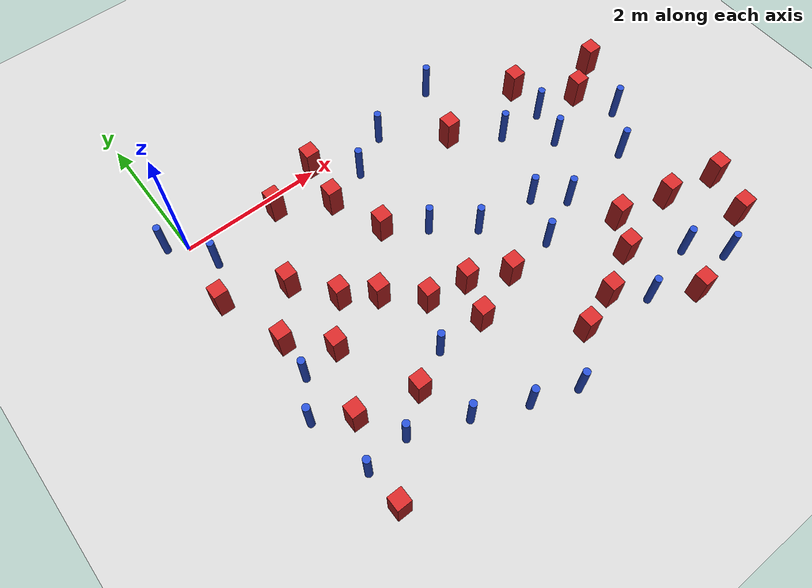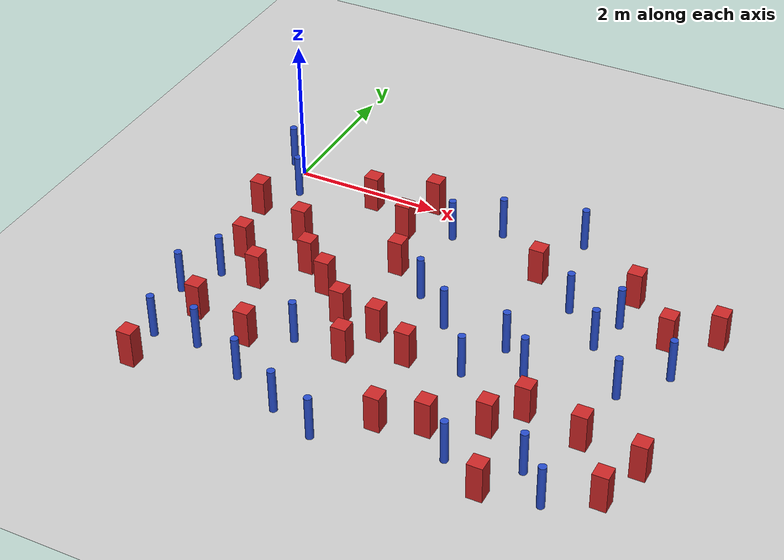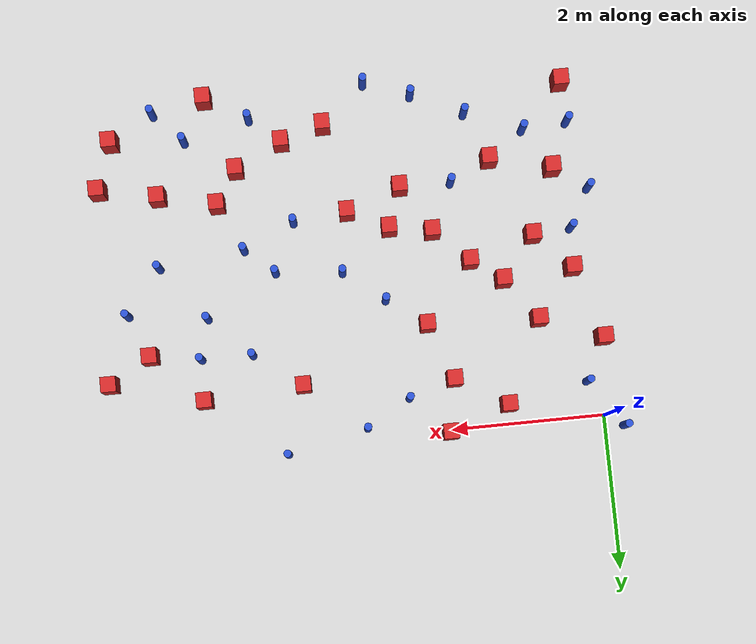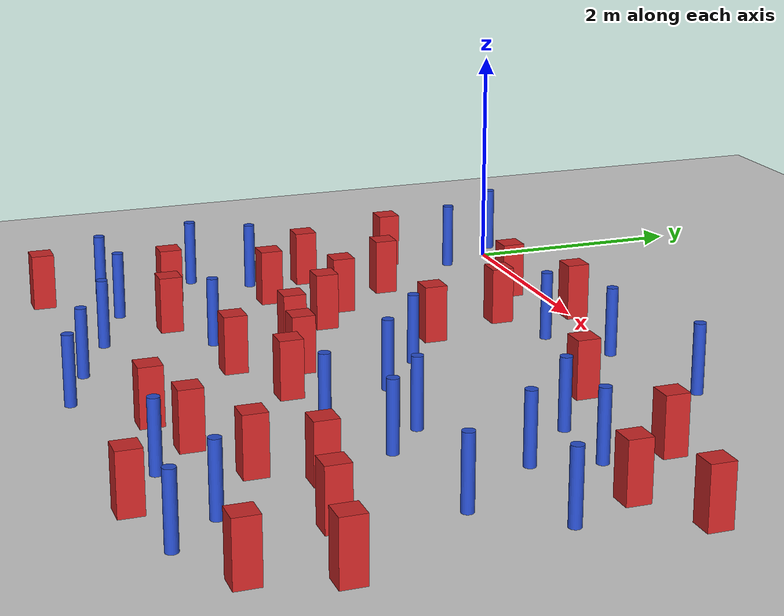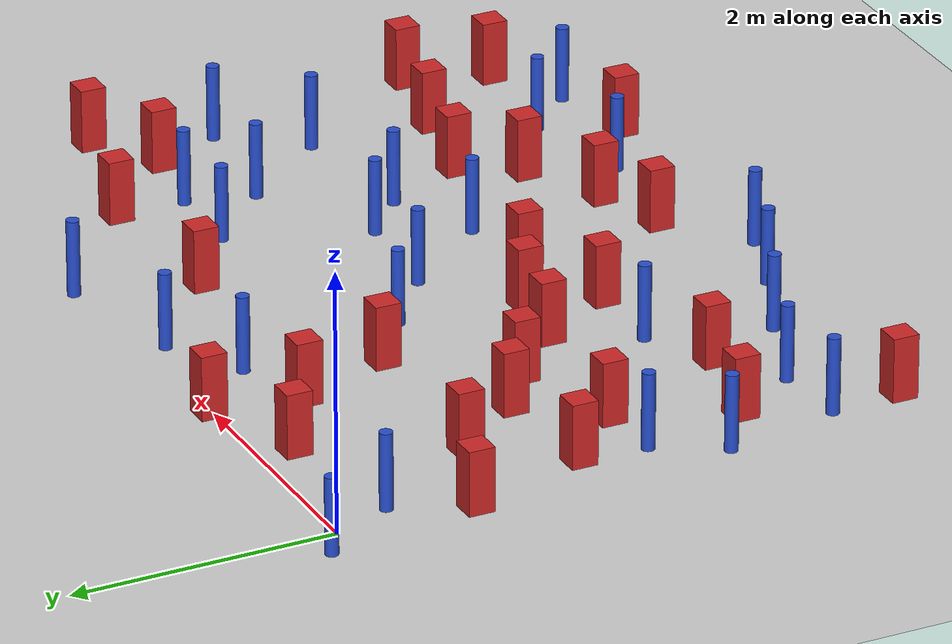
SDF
<sdf version="1.6">
 <world name="default">
  <model name="ground_plane">
   <static>1</static>
   <link name="link">
    <collision name="collision">
     <geometry><plane><normal>0 0 1</normal><size>100 100</size></plane></geometry>
     <surface><friction><ode><mu>100</mu><mu2>50</mu2></ode></friction></surface>
    </collision>
    <visual name="visual">
     <cast_shadows>0</cast_shadows>
     <geometry><plane><normal>0 0 1</normal><size>100 100</size></plane></geometry>
     <material>
      <ambient>1.0 1.0 1.0 1.0</ambient>
      <diffuse>0.8 0.8 0.8 1.0</diffuse>
      <specular>0.01 0.01 0.01 1.000000</specular>
     </material>
    </visual>
   </link>
  </model>
  <model name="NamedLocations">
   <static>true</static>
   <link name="DefaultStart"><pose>8.5 0 0 0 0 3.14</pose></link>
  </model>
  <model name="pole_obstacle0">
   <static>true</static>
   <pose>-0.240299481818 0.152974153635 -9.47619616065e-06 5.49618799737e-07 2.36310414057e-07 -1.55090534801e-07</pose>
   <link name="link">
    <pose>0 0 0.3 0 -0 0</pose>
    <inertial>
     <mass>1</mass>
     <inertia><ixx>0.145833</ixx><ixy>0</ixy><ixz>0</ixz><iyy>0.145833</iyy><iyz>0</iyz><izz>0.125</izz></inertia>
    </inertial>
    <collision name="collision">
     <geometry><cylinder><radius>0.05</radius><length>.6</length></cylinder></geometry>
    </collision>
    <visual name="visual">
     <geometry><cylinder><radius>0.05</radius><length>.6</length></cylinder></geometry>
     <material>
      <script><name>Gazebo/Blue</name><uri>file://media/materials/scripts/gazebo.material</uri></script>
     </material>
    </visual>
   </link>
  </model>
  <model name="square_post_obstacle6">
   <static>true</static>
   <pose>6.10533569681 -4.18703966137 -6.11067671241e-07 -5.50515727128e-06 -8.79689657224e-07 2.37013304536e-05</pose>
   <link name="link">
    <pose>0 0 0.25 0 -0 0</pose>
    <inertial>
     <mass>100</mass>
     <inertia>
      <ixx>0.166667</ixx>
      <ixy>0</ixy>
      <ixz>0</ixz>
      <iyy>0.166667</iyy>
      <iyz>0</iyz>
      <izz>0.166667</izz>
     </inertia>
    </inertial>
    <collision name="collision"><geometry><box><size>.2 .2 .5</size></box></geometry></collision>
    <visual name="visual">
     <geometry><box><size>.2 .2 .5</size></box></geometry>
     <material>
      <script><name>Gazebo/Red</name><uri>file://media/materials/scripts/gazebo.material</uri></script>
     </material>
    </visual>
   </link>
  </model>
  <model name="square_post_obstacle10">
   <static>true</static>
   <pose>2.00440950209 -2.61996437505 -6.11067671241e-07 -5.50515727128e-06 -8.79689657224e-07 2.37013304536e-05</pose>
   <link name="link">
    <pose>0 0 0.25 0 -0 0</pose>
    <inertial>
     <mass>100</mass>
     <inertia>
      <ixx>0.166667</ixx>
      <ixy>0</ixy>
      <ixz>0</ixz>
      <iyy>0.166667</iyy>
      <iyz>0</iyz>
      <izz>0.166667</izz>
     </inertia>
    </inertial>
    <collision name="collision"><geometry><box><size>.2 .2 .5</size></box></geometry></collision>
    <visual name="visual">
     <geometry><box><size>.2 .2 .5</size></box></geometry>
     <material>
      <script><name>Gazebo/Red</name><uri>file://media/materials/scripts/gazebo.material</uri></script>
     </material>
    </visual>
   </link>
  </model>
  <model name="pole_obstacle14">
   <static>true</static>
   <pose>2.72122308292 -4.6622188699 -9.47619616065e-06 5.49618799738e-07 2.3631041406e-07 -1.55090534801e-07</pose>
   <link name="link">
    <pose>0 0 0.3 0 -0 0</pose>
    <inertial>
     <mass>1</mass>
     <inertia><ixx>0.145833</ixx><ixy>0</ixy><ixz>0</ixz><iyy>0.145833</iyy><iyz>0</iyz><izz>0.125</izz></inertia>
    </inertial>
    <collision name="collision">
     <geometry><cylinder><radius>0.05</radius><length>.6</length></cylinder></geometry>
    </collision>
    <visual name="visual">
     <geometry><cylinder><radius>0.05</radius><length>.6</length></cylinder></geometry>
     <material>
      <script><name>Gazebo/Blue</name><uri>file://media/materials/scripts/gazebo.material</uri></script>
     </material>
    </visual>
   </link>
  </model>
  <model name="pole_obstacle15">
   <static>true</static>
   <pose>3.08732034413 -0.124005722721 -9.47619616065e-06 5.49618799737e-07 2.36310414068e-07 -1.55090534797e-07</pose>
   <link name="link">
    <pose>0 0 0.3 0 -0 0</pose>
    <inertial>
     <mass>1</mass>
     <inertia><ixx>0.145833</ixx><ixy>0</ixy><ixz>0</ixz><iyy>0.145833</iyy><iyz>0</iyz><izz>0.125</izz></inertia>
    </inertial>
    <collision name="collision">
     <geometry><cylinder><radius>0.05</radius><length>.6</length></cylinder></geometry>
    </collision>
    <visual name="visual">
     <geometry><cylinder><radius>0.05</radius><length>.6</length></cylinder></geometry>
     <material>
      <script><name>Gazebo/Blue</name><uri>file://media/materials/scripts/gazebo.material</uri></script>
     </material>
    </visual>
   </link>
  </model>
  <model name="square_post_obstacle14">
   <static>true</static>
   <pose>3.09111483869 -2.97854127814 -6.11067671241e-07 -5.50515727128e-06 -8.79689657224e-07 2.37013304536e-05</pose>
   <link name="link">
    <pose>0 0 0.25 0 -0 0</pose>
    <inertial>
     <mass>100</mass>
     <inertia>
      <ixx>0.166667</ixx>
      <ixy>0</ixy>
      <ixz>0</ixz>
      <iyy>0.166667</iyy>
      <iyz>0</iyz>
      <izz>0.166667</izz>
     </inertia>
    </inertial>
    <collision name="collision"><geometry><box><size>.2 .2 .5</size></box></geometry></collision>
    <visual name="visual">
     <geometry><box><size>.2 .2 .5</size></box></geometry>
     <material>
      <script><name>Gazebo/Red</name><uri>file://media/materials/scripts/gazebo.material</uri></script>
     </material>
    </visual>
   </link>
  </model>
  <model name="square_post_obstacle24">
   <static>true</static>
   <pose>2.56142833989 -2.71407532058 -6.11067671241e-07 -5.50515727128e-06 -8.79689657224e-07 2.37013304536e-05</pose>
   <link name="link">
    <pose>0 0 0.25 0 -0 0</pose>
    <inertial>
     <mass>100</mass>
     <inertia>
      <ixx>0.166667</ixx>
      <ixy>0</ixy>
      <ixz>0</ixz>
      <iyy>0.166667</iyy>
      <iyz>0</iyz>
      <izz>0.166667</izz>
     </inertia>
    </inertial>
    <collision name="collision"><geometry><box><size>.2 .2 .5</size></box></geometry></collision>
    <visual name="visual">
     <geometry><box><size>.2 .2 .5</size></box></geometry>
     <material>
      <script><name>Gazebo/Red</name><uri>file://media/materials/scripts/gazebo.material</uri></script>
     </material>
    </visual>
   </link>
  </model>
  <model name="pole_obstacle35">
   <static>true</static>
   <pose>2.11501321267 -4.44668897522 -9.47619616065e-06 5.49618799738e-07 2.3631041406e-07 -1.55090534801e-07</pose>
   <link name="link">
    <pose>0 0 0.3 0 -0 0</pose>
    <inertial>
     <mass>1</mass>
     <inertia><ixx>0.145833</ixx><ixy>0</ixy><ixz>0</ixz><iyy>0.145833</iyy><iyz>0</iyz><izz>0.125</izz></inertia>
    </inertial>
    <collision name="collision">
     <geometry><cylinder><radius>0.05</radius><length>.6</length></cylinder></geometry>
    </collision>
    <visual name="visual">
     <geometry><cylinder><radius>0.05</radius><length>.6</length></cylinder></geometry>
     <material>
      <script><name>Gazebo/Blue</name><uri>file://media/materials/scripts/gazebo.material</uri></script>
     </material>
    </visual>
   </link>
  </model>
  <model name="pole_obstacle39">
   <static>true</static>
   <pose>2.69395687994 -1.76997188868 -9.47619616065e-06 5.49618799737e-07 2.36310414072e-07 -1.55090534793e-07</pose>
   <link name="link">
    <pose>0 0 0.3 0 -0 0</pose>
    <inertial>
     <mass>1</mass>
     <inertia><ixx>0.145833</ixx><ixy>0</ixy><ixz>0</ixz><iyy>0.145833</iyy><iyz>0</iyz><izz>0.125</izz></inertia>
    </inertial>
    <collision name="collision">
     <geometry><cylinder><radius>0.05</radius><length>.6</length></cylinder></geometry>
    </collision>
    <visual name="visual">
     <geometry><cylinder><radius>0.05</radius><length>.6</length></cylinder></geometry>
     <material>
      <script><name>Gazebo/Blue</name><uri>file://media/materials/scripts/gazebo.material</uri></script>
     </material>
    </visual>
   </link>
  </model>
  <model name="pole_obstacle44">
   <static>true</static>
   <pose>0.18735743125 -2.48860480295 -9.47619616065e-06 5.49618799738e-07 2.36310414068e-07 -1.55090534794e-07</pose>
   <link name="link">
    <pose>0 0 0.3 0 -0 0</pose>
    <inertial>
     <mass>1</mass>
     <inertia><ixx>0.145833</ixx><ixy>0</ixy><ixz>0</ixz><iyy>0.145833</iyy><iyz>0</iyz><izz>0.125</izz></inertia>
    </inertial>
    <collision name="collision">
     <geometry><cylinder><radius>0.05</radius><length>.6</length></cylinder></geometry>
    </collision>
    <visual name="visual">
     <geometry><cylinder><radius>0.05</radius><length>.6</length></cylinder></geometry>
     <material>
      <script><name>Gazebo/Blue</name><uri>file://media/materials/scripts/gazebo.material</uri></script>
     </material>
    </visual>
   </link>
  </model>
  <model name="square_post_obstacle37">
   <static>true</static>
   <pose>5.53992866116 -3.40059529593 -6.11067671241e-07 -5.50515727128e-06 -8.79689657224e-07 2.37013304536e-05</pose>
   <link name="link">
    <pose>0 0 0.25 0 -0 0</pose>
    <inertial>
     <mass>100</mass>
     <inertia>
      <ixx>0.166667</ixx>
      <ixy>0</ixy>
      <ixz>0</ixz>
      <iyy>0.166667</iyy>
      <iyz>0</iyz>
      <izz>0.166667</izz>
     </inertia>
    </inertial>
    <collision name="collision"><geometry><box><size>.2 .2 .5</size></box></geometry></collision>
    <visual name="visual">
     <geometry><box><size>.2 .2 .5</size></box></geometry>
     <material>
      <script><name>Gazebo/Red</name><uri>file://media/materials/scripts/gazebo.material</uri></script>
     </material>
    </visual>
   </link>
  </model>
  <model name="pole_obstacle67">
   <static>true</static>
   <pose>0.181871687395 -0.462348068534 -9.47619616065e-06 5.49618799737e-07 2.36310414052e-07 -1.55090534804e-07</pose>
   <link name="link">
    <pose>0 0 0.3 0 -0 0</pose>
    <inertial>
     <mass>1</mass>
     <inertia><ixx>0.145833</ixx><ixy>0</ixy><ixz>0</ixz><iyy>0.145833</iyy><iyz>0</iyz><izz>0.125</izz></inertia>
    </inertial>
    <collision name="collision">
     <geometry><cylinder><radius>0.05</radius><length>.6</length></cylinder></geometry>
    </collision>
    <visual name="visual">
     <geometry><cylinder><radius>0.05</radius><length>.6</length></cylinder></geometry>
     <material>
      <script><name>Gazebo/Blue</name><uri>file://media/materials/scripts/gazebo.material</uri></script>
     </material>
    </visual>
   </link>
  </model>
  <model name="pole_obstacle68">
   <static>true</static>
   <pose>4.14643457589 0.117384610762 -9.47619616065e-06 5.49618799737e-07 2.36310414067e-07 -1.55090534797e-07</pose>
   <link name="link">
    <pose>0 0 0.3 0 -0 0</pose>
    <inertial>
     <mass>1</mass>
     <inertia><ixx>0.145833</ixx><ixy>0</ixy><ixz>0</ixz><iyy>0.145833</iyy><iyz>0</iyz><izz>0.125</izz></inertia>
    </inertial>
    <collision name="collision">
     <geometry><cylinder><radius>0.05</radius><length>.6</length></cylinder></geometry>
    </collision>
    <visual name="visual">
     <geometry><cylinder><radius>0.05</radius><length>.6</length></cylinder></geometry>
     <material>
      <script><name>Gazebo/Blue</name><uri>file://media/materials/scripts/gazebo.material</uri></script>
     </material>
    </visual>
   </link>
  </model>
  <model name="square_post_obstacle53">
   <static>true</static>
   <pose>3.30415461743 -4.15804228002 -6.11067671241e-07 -5.50515727128e-06 -8.79689657224e-07 2.37013304536e-05</pose>
   <link name="link">
    <pose>0 0 0.25 0 -0 0</pose>
    <inertial>
     <mass>100</mass>
     <inertia>
      <ixx>0.166667</ixx>
      <ixy>0</ixy>
      <ixz>0</ixz>
      <iyy>0.166667</iyy>
      <iyz>0</iyz>
      <izz>0.166667</izz>
     </inertia>
    </inertial>
    <collision name="collision"><geometry><box><size>.2 .2 .5</size></box></geometry></collision>
    <visual name="visual">
     <geometry><box><size>.2 .2 .5</size></box></geometry>
     <material>
      <script><name>Gazebo/Red</name><uri>file://media/materials/scripts/gazebo.material</uri></script>
     </material>
    </visual>
   </link>
  </model>
  <model name="square_post_obstacle54">
   <static>true</static>
   <pose>3.86703430793 -0.761569076398 -6.11067671241e-07 -5.50515727128e-06 -8.79689657224e-07 2.37013304536e-05</pose>
   <link name="link">
    <pose>0 0 0.25 0 -0 0</pose>
    <inertial>
     <mass>100</mass>
     <inertia>
      <ixx>0.166667</ixx>
      <ixy>0</ixy>
      <ixz>0</ixz>
      <iyy>0.166667</iyy>
      <iyz>0</iyz>
      <izz>0.166667</izz>
     </inertia>
    </inertial>
    <collision name="collision"><geometry><box><size>.2 .2 .5</size></box></geometry></collision>
    <visual name="visual">
     <geometry><box><size>.2 .2 .5</size></box></geometry>
     <material>
      <script><name>Gazebo/Red</name><uri>file://media/materials/scripts/gazebo.material</uri></script>
     </material>
    </visual>
   </link>
  </model>
  <model name="square_post_obstacle55">
   <static>true</static>
   <pose>2.02506258432 0.0269678981709 -6.11067671241e-07 -5.50515727128e-06 -8.79689657224e-07 2.37013304536e-05</pose>
   <link name="link">
    <pose>0 0 0.25 0 -0 0</pose>
    <inertial>
     <mass>100</mass>
     <inertia>
      <ixx>0.166667</ixx>
      <ixy>0</ixy>
      <ixz>0</ixz>
      <iyy>0.166667</iyy>
      <iyz>0</iyz>
      <izz>0.166667</izz>
     </inertia>
    </inertial>
    <collision name="collision"><geometry><box><size>.2 .2 .5</size></box></geometry></collision>
    <visual name="visual">
     <geometry><box><size>.2 .2 .5</size></box></geometry>
     <material>
      <script><name>Gazebo/Red</name><uri>file://media/materials/scripts/gazebo.material</uri></script>
     </material>
    </visual>
   </link>
  </model>
  <model name="pole_obstacle69">
   <static>true</static>
   <pose>5.60755262189 -2.46643625858 -9.47619616065e-06 5.49618799738e-07 2.36310414051e-07 -1.55090534805e-07</pose>
   <link name="link">
    <pose>0 0 0.3 0 -0 0</pose>
    <inertial>
     <mass>1</mass>
     <inertia><ixx>0.145833</ixx><ixy>0</ixy><ixz>0</ixz><iyy>0.145833</iyy><iyz>0</iyz><izz>0.125</izz></inertia>
    </inertial>
    <collision name="collision">
     <geometry><cylinder><radius>0.05</radius><length>.6</length></cylinder></geometry>
    </collision>
    <visual name="visual">
     <geometry><cylinder><radius>0.05</radius><length>.6</length></cylinder></geometry>
     <material>
      <script><name>Gazebo/Blue</name><uri>file://media/materials/scripts/gazebo.material</uri></script>
     </material>
    </visual>
   </link>
  </model>
  <model name="square_post_obstacle61">
   <static>true</static>
   <pose>4.77623949653 -3.23371440541 -6.11067671241e-07 -5.50515727128e-06 -8.79689657224e-07 2.37013304536e-05</pose>
   <link name="link">
    <pose>0 0 0.25 0 -0 0</pose>
    <inertial>
     <mass>100</mass>
     <inertia>
      <ixx>0.166667</ixx>
      <ixy>0</ixy>
      <ixz>0</ixz>
      <iyy>0.166667</iyy>
      <iyz>0</iyz>
      <izz>0.166667</izz>
     </inertia>
    </inertial>
    <collision name="collision"><geometry><box><size>.2 .2 .5</size></box></geometry></collision>
    <visual name="visual">
     <geometry><box><size>.2 .2 .5</size></box></geometry>
     <material>
      <script><name>Gazebo/Red</name><uri>file://media/materials/scripts/gazebo.material</uri></script>
     </material>
    </visual>
   </link>
  </model>
  <model name="square_post_obstacle70">
   <static>true</static>
   <pose>0.700120316315 -2.44375437625 -6.11067671241e-07 -5.50515727128e-06 -8.79689657224e-07 2.37013304536e-05</pose>
   <link name="link">
    <pose>0 0 0.25 0 -0 0</pose>
    <inertial>
     <mass>100</mass>
     <inertia>
      <ixx>0.166667</ixx>
      <ixy>0</ixy>
      <ixz>0</ixz>
      <iyy>0.166667</iyy>
      <iyz>0</iyz>
      <izz>0.166667</izz>
     </inertia>
    </inertial>
    <collision name="collision"><geometry><box><size>.2 .2 .5</size></box></geometry></collision>
    <visual name="visual">
     <geometry><box><size>.2 .2 .5</size></box></geometry>
     <material>
      <script><name>Gazebo/Red</name><uri>file://media/materials/scripts/gazebo.material</uri></script>
     </material>
    </visual>
   </link>
  </model>
  <model name="pole_obstacle82">
   <static>true</static>
   <pose>4.48062844624 -2.60001021089 -9.47619616065e-06 5.49618799738e-07 2.36310414051e-07 -1.55090534805e-07</pose>
   <link name="link">
    <pose>0 0 0.3 0 -0 0</pose>
    <inertial>
     <mass>1</mass>
     <inertia><ixx>0.145833</ixx><ixy>0</ixy><ixz>0</ixz><iyy>0.145833</iyy><iyz>0</iyz><izz>0.125</izz></inertia>
    </inertial>
    <collision name="collision">
     <geometry><cylinder><radius>0.05</radius><length>.6</length></cylinder></geometry>
    </collision>
    <visual name="visual">
     <geometry><cylinder><radius>0.05</radius><length>.6</length></cylinder></geometry>
     <material>
      <script><name>Gazebo/Blue</name><uri>file://media/materials/scripts/gazebo.material</uri></script>
     </material>
    </visual>
   </link>
  </model>
  <model name="square_post_obstacle76">
   <static>true</static>
   <pose>0.356748601217 -3.30609268458 -6.11067671241e-07 -5.50515727128e-06 -8.79689657224e-07 2.37013304536e-05</pose>
   <link name="link">
    <pose>0 0 0.25 0 -0 0</pose>
    <inertial>
     <mass>100</mass>
     <inertia>
      <ixx>0.166667</ixx>
      <ixy>0</ixy>
      <ixz>0</ixz>
      <iyy>0.166667</iyy>
      <iyz>0</iyz>
      <izz>0.166667</izz>
     </inertia>
    </inertial>
    <collision name="collision"><geometry><box><size>.2 .2 .5</size></box></geometry></collision>
    <visual name="visual">
     <geometry><box><size>.2 .2 .5</size></box></geometry>
     <material>
      <script><name>Gazebo/Red</name><uri>file://media/materials/scripts/gazebo.material</uri></script>
     </material>
    </visual>
   </link>
  </model>
  <model name="pole_obstacle90">
   <static>true</static>
   <pose>4.09755227436 -2.26523370769 -9.47619616065e-06 5.49618799738e-07 2.36310414051e-07 -1.55090534805e-07</pose>
   <link name="link">
    <pose>0 0 0.3 0 -0 0</pose>
    <inertial>
     <mass>1</mass>
     <inertia><ixx>0.145833</ixx><ixy>0</ixy><ixz>0</ixz><iyy>0.145833</iyy><iyz>0</iyz><izz>0.125</izz></inertia>
    </inertial>
    <collision name="collision">
     <geometry><cylinder><radius>0.05</radius><length>.6</length></cylinder></geometry>
    </collision>
    <visual name="visual">
     <geometry><cylinder><radius>0.05</radius><length>.6</length></cylinder></geometry>
     <material>
      <script><name>Gazebo/Blue</name><uri>file://media/materials/scripts/gazebo.material</uri></script>
     </material>
    </visual>
   </link>
  </model>
  <model name="square_post_obstacle82">
   <static>true</static>
   <pose>3.86720397368 -3.98480551389 -6.11067671241e-07 -5.50515727128e-06 -8.79689657224e-07 2.37013304536e-05</pose>
   <link name="link">
    <pose>0 0 0.25 0 -0 0</pose>
    <inertial>
     <mass>100</mass>
     <inertia>
      <ixx>0.166667</ixx>
      <ixy>0</ixy>
      <ixz>0</ixz>
      <iyy>0.166667</iyy>
      <iyz>0</iyz>
      <izz>0.166667</izz>
     </inertia>
    </inertial>
    <collision name="collision"><geometry><box><size>.2 .2 .5</size></box></geometry></collision>
    <visual name="visual">
     <geometry><box><size>.2 .2 .5</size></box></geometry>
     <material>
      <script><name>Gazebo/Red</name><uri>file://media/materials/scripts/gazebo.material</uri></script>
     </material>
    </visual>
   </link>
  </model>
  <model name="square_post_obstacle85">
   <static>true</static>
   <pose>4.83126122299 -4.64924901179 -6.11067671241e-07 -5.50515727128e-06 -8.79689657224e-07 2.37013304536e-05</pose>
   <link name="link">
    <pose>0 0 0.25 0 -0 0</pose>
    <inertial>
     <mass>100</mass>
     <inertia>
      <ixx>0.166667</ixx>
      <ixy>0</ixy>
      <ixz>0</ixz>
      <iyy>0.166667</iyy>
      <iyz>0</iyz>
      <izz>0.166667</izz>
     </inertia>
    </inertial>
    <collision name="collision"><geometry><box><size>.2 .2 .5</size></box></geometry></collision>
    <visual name="visual">
     <geometry><box><size>.2 .2 .5</size></box></geometry>
     <material>
      <script><name>Gazebo/Red</name><uri>file://media/materials/scripts/gazebo.material</uri></script>
     </material>
    </visual>
   </link>
  </model>
  <model name="square_post_obstacle88">
   <static>true</static>
   <pose>6.3158927276 -3.55991471031 -6.11067671241e-07 -5.50515727128e-06 -8.79689657224e-07 2.37013304536e-05</pose>
   <link name="link">
    <pose>0 0 0.25 0 -0 0</pose>
    <inertial>
     <mass>100</mass>
     <inertia>
      <ixx>0.166667</ixx>
      <ixy>0</ixy>
      <ixz>0</ixz>
      <iyy>0.166667</iyy>
      <iyz>0</iyz>
      <izz>0.166667</izz>
     </inertia>
    </inertial>
    <collision name="collision"><geometry><box><size>.2 .2 .5</size></box></geometry></collision>
    <visual name="visual">
     <geometry><box><size>.2 .2 .5</size></box></geometry>
     <material>
      <script><name>Gazebo/Red</name><uri>file://media/materials/scripts/gazebo.material</uri></script>
     </material>
    </visual>
   </link>
  </model>
  <model name="pole_obstacle97">
   <static>true</static>
   <pose>5.52544303441 -4.5111514518 -9.47619616065e-06 5.49618799737e-07 2.36310414037e-07 -1.55090534814e-07</pose>
   <link name="link">
    <pose>0 0 0.3 0 -0 0</pose>
    <inertial>
     <mass>1</mass>
     <inertia><ixx>0.145833</ixx><ixy>0</ixy><ixz>0</ixz><iyy>0.145833</iyy><iyz>0</iyz><izz>0.125</izz></inertia>
    </inertial>
    <collision name="collision">
     <geometry><cylinder><radius>0.05</radius><length>.6</length></cylinder></geometry>
    </collision>
    <visual name="visual">
     <geometry><cylinder><radius>0.05</radius><length>.6</length></cylinder></geometry>
     <material>
      <script><name>Gazebo/Blue</name><uri>file://media/materials/scripts/gazebo.material</uri></script>
     </material>
    </visual>
   </link>
  </model>
  <model name="pole_obstacle98">
   <static>true</static>
   <pose>1.69802144728 -3.23610538821 -9.47619616065e-06 5.49618799737e-07 2.36310414062e-07 -1.55090534798e-07</pose>
   <link name="link">
    <pose>0 0 0.3 0 -0 0</pose>
    <inertial>
     <mass>1</mass>
     <inertia><ixx>0.145833</ixx><ixy>0</ixy><ixz>0</ixz><iyy>0.145833</iyy><iyz>0</iyz><izz>0.125</izz></inertia>
    </inertial>
    <collision name="collision">
     <geometry><cylinder><radius>0.05</radius><length>.6</length></cylinder></geometry>
    </collision>
    <visual name="visual">
     <geometry><cylinder><radius>0.05</radius><length>.6</length></cylinder></geometry>
     <material>
      <script><name>Gazebo/Blue</name><uri>file://media/materials/scripts/gazebo.material</uri></script>
     </material>
    </visual>
   </link>
  </model>
  <model name="pole_obstacle108">
   <static>true</static>
   <pose>5.16380093295 -1.22243509806 -9.47619616065e-06 5.49618799738e-07 2.36310414071e-07 -1.55090534796e-07</pose>
   <link name="link">
    <pose>0 0 0.3 0 -0 0</pose>
    <inertial>
     <mass>1</mass>
     <inertia><ixx>0.145833</ixx><ixy>0</ixy><ixz>0</ixz><iyy>0.145833</iyy><iyz>0</iyz><izz>0.125</izz></inertia>
    </inertial>
    <collision name="collision">
     <geometry><cylinder><radius>0.05</radius><length>.6</length></cylinder></geometry>
    </collision>
    <visual name="visual">
     <geometry><cylinder><radius>0.05</radius><length>.6</length></cylinder></geometry>
     <material>
      <script><name>Gazebo/Blue</name><uri>file://media/materials/scripts/gazebo.material</uri></script>
     </material>
    </visual>
   </link>
  </model>
  <model name="pole_obstacle117">
   <static>true</static>
   <pose>4.49183869158 -1.21585915619 -9.47619616065e-06 5.49618799738e-07 2.36310414071e-07 -1.55090534796e-07</pose>
   <link name="link">
    <pose>0 0 0.3 0 -0 0</pose>
    <inertial>
     <mass>1</mass>
     <inertia><ixx>0.145833</ixx><ixy>0</ixy><ixz>0</ixz><iyy>0.145833</iyy><iyz>0</iyz><izz>0.125</izz></inertia>
    </inertial>
    <collision name="collision">
     <geometry><cylinder><radius>0.05</radius><length>.6</length></cylinder></geometry>
    </collision>
    <visual name="visual">
     <geometry><cylinder><radius>0.05</radius><length>.6</length></cylinder></geometry>
     <material>
      <script><name>Gazebo/Blue</name><uri>file://media/materials/scripts/gazebo.material</uri></script>
     </material>
    </visual>
   </link>
  </model>
  <model name="pole_obstacle128">
   <static>true</static>
   <pose>2.50812097265 -0.463264640705 -9.47619616065e-06 5.49618799737e-07 2.36310414066e-07 -1.55090534798e-07</pose>
   <link name="link">
    <pose>0 0 0.3 0 -0 0</pose>
    <inertial>
     <mass>1</mass>
     <inertia><ixx>0.145833</ixx><ixy>0</ixy><ixz>0</ixz><iyy>0.145833</iyy><iyz>0</iyz><izz>0.125</izz></inertia>
    </inertial>
    <collision name="collision">
     <geometry><cylinder><radius>0.05</radius><length>.6</length></cylinder></geometry>
    </collision>
    <visual name="visual">
     <geometry><cylinder><radius>0.05</radius><length>.6</length></cylinder></geometry>
     <material>
      <script><name>Gazebo/Blue</name><uri>file://media/materials/scripts/gazebo.material</uri></script>
     </material>
    </visual>
   </link>
  </model>
  <model name="pole_obstacle130">
   <static>true</static>
   <pose>5.14182631632 -4.10890187203 -9.47619616065e-06 5.49618799737e-07 2.36310414037e-07 -1.55090534814e-07</pose>
   <link name="link">
    <pose>0 0 0.3 0 -0 0</pose>
    <inertial>
     <mass>1</mass>
     <inertia><ixx>0.145833</ixx><ixy>0</ixy><ixz>0</ixz><iyy>0.145833</iyy><iyz>0</iyz><izz>0.125</izz></inertia>
    </inertial>
    <collision name="collision">
     <geometry><cylinder><radius>0.05</radius><length>.6</length></cylinder></geometry>
    </collision>
    <visual name="visual">
     <geometry><cylinder><radius>0.05</radius><length>.6</length></cylinder></geometry>
     <material>
      <script><name>Gazebo/Blue</name><uri>file://media/materials/scripts/gazebo.material</uri></script>
     </material>
    </visual>
   </link>
  </model>
  <model name="pole_obstacle134">
   <static>true</static>
   <pose>4.26820003731 -4.32938499524 -9.47619616065e-06 5.49618799737e-07 2.36310414037e-07 -1.55090534814e-07</pose>
   <link name="link">
    <pose>0 0 0.3 0 -0 0</pose>
    <inertial>
     <mass>1</mass>
     <inertia><ixx>0.145833</ixx><ixy>0</ixy><ixz>0</ixz><iyy>0.145833</iyy><iyz>0</iyz><izz>0.125</izz></inertia>
    </inertial>
    <collision name="collision">
     <geometry><cylinder><radius>0.05</radius><length>.6</length></cylinder></geometry>
    </collision>
    <visual name="visual">
     <geometry><cylinder><radius>0.05</radius><length>.6</length></cylinder></geometry>
     <material>
      <script><name>Gazebo/Blue</name><uri>file://media/materials/scripts/gazebo.material</uri></script>
     </material>
    </visual>
   </link>
  </model>
  <model name="pole_obstacle137">
   <static>true</static>
   <pose>1.43488998938 -4.13742060281 -9.47619616065e-06 5.49618799737e-07 2.36310414061e-07 -1.550905348e-07</pose>
   <link name="link">
    <pose>0 0 0.3 0 -0 0</pose>
    <inertial>
     <mass>1</mass>
     <inertia><ixx>0.145833</ixx><ixy>0</ixy><ixz>0</ixz><iyy>0.145833</iyy><iyz>0</iyz><izz>0.125</izz></inertia>
    </inertial>
    <collision name="collision">
     <geometry><cylinder><radius>0.05</radius><length>.6</length></cylinder></geometry>
    </collision>
    <visual name="visual">
     <geometry><cylinder><radius>0.05</radius><length>.6</length></cylinder></geometry>
     <material>
      <script><name>Gazebo/Blue</name><uri>file://media/materials/scripts/gazebo.material</uri></script>
     </material>
    </visual>
   </link>
  </model>
  <model name="square_post_obstacle138">
   <static>true</static>
   <pose>0.224098370027 -1.96644473021 -6.11067671241e-07 -5.50515727128e-06 -8.79689657224e-07 2.37013304536e-05</pose>
   <link name="link">
    <pose>0 0 0.25 0 -0 0</pose>
    <inertial>
     <mass>100</mass>
     <inertia>
      <ixx>0.166667</ixx>
      <ixy>0</ixy>
      <ixz>0</ixz>
      <iyy>0.166667</iyy>
      <iyz>0</iyz>
      <izz>0.166667</izz>
     </inertia>
    </inertial>
    <collision name="collision"><geometry><box><size>.2 .2 .5</size></box></geometry></collision>
    <visual name="visual">
     <geometry><box><size>.2 .2 .5</size></box></geometry>
     <material>
      <script><name>Gazebo/Red</name><uri>file://media/materials/scripts/gazebo.material</uri></script>
     </material>
    </visual>
   </link>
  </model>
  <model name="pole_obstacle142">
   <static>true</static>
   <pose>6.06916516345 -1.87708028532 -9.47619616065e-06 5.49618799738e-07 2.36310414071e-07 -1.55090534796e-07</pose>
   <link name="link">
    <pose>0 0 0.3 0 -0 0</pose>
    <inertial>
     <mass>1</mass>
     <inertia><ixx>0.145833</ixx><ixy>0</ixy><ixz>0</ixz><iyy>0.145833</iyy><iyz>0</iyz><izz>0.125</izz></inertia>
    </inertial>
    <collision name="collision">
     <geometry><cylinder><radius>0.05</radius><length>.6</length></cylinder></geometry>
    </collision>
    <visual name="visual">
     <geometry><cylinder><radius>0.05</radius><length>.6</length></cylinder></geometry>
     <material>
      <script><name>Gazebo/Blue</name><uri>file://media/materials/scripts/gazebo.material</uri></script>
     </material>
    </visual>
   </link>
  </model>
  <model name="square_post_obstacle139">
   <static>true</static>
   <pose>4.49313546081 -3.67228720673 -6.11067671241e-07 -5.50515727128e-06 -8.79689657224e-07 2.37013304536e-05</pose>
   <link name="link">
    <pose>0 0 0.25 0 -0 0</pose>
    <inertial>
     <mass>100</mass>
     <inertia>
      <ixx>0.166667</ixx>
      <ixy>0</ixy>
      <ixz>0</ixz>
      <iyy>0.166667</iyy>
      <iyz>0</iyz>
      <izz>0.166667</izz>
     </inertia>
    </inertial>
    <collision name="collision"><geometry><box><size>.2 .2 .5</size></box></geometry></collision>
    <visual name="visual">
     <geometry><box><size>.2 .2 .5</size></box></geometry>
     <material>
      <script><name>Gazebo/Red</name><uri>file://media/materials/scripts/gazebo.material</uri></script>
     </material>
    </visual>
   </link>
  </model>
  <model name="pole_obstacle146">
   <static>true</static>
   <pose>3.22239131291 -2.18536874327 -9.47619616065e-06 5.49618799737e-07 2.36310414051e-07 -1.55090534807e-07</pose>
   <link name="link">
    <pose>0 0 0.3 0 -0 0</pose>
    <inertial>
     <mass>1</mass>
     <inertia><ixx>0.145833</ixx><ixy>0</ixy><ixz>0</ixz><iyy>0.145833</iyy><iyz>0</iyz><izz>0.125</izz></inertia>
    </inertial>
    <collision name="collision">
     <geometry><cylinder><radius>0.05</radius><length>.6</length></cylinder></geometry>
    </collision>
    <visual name="visual">
     <geometry><cylinder><radius>0.05</radius><length>.6</length></cylinder></geometry>
     <material>
      <script><name>Gazebo/Blue</name><uri>file://media/materials/scripts/gazebo.material</uri></script>
     </material>
    </visual>
   </link>
  </model>
  <model name="square_post_obstacle141">
   <static>true</static>
   <pose>0.731204884408 -1.33912670988 -6.11067671241e-07 -5.50515727128e-06 -8.79689657224e-07 2.37013304536e-05</pose>
   <link name="link">
    <pose>0 0 0.25 0 -0 0</pose>
    <inertial>
     <mass>100</mass>
     <inertia>
      <ixx>0.166667</ixx>
      <ixy>0</ixy>
      <ixz>0</ixz>
      <iyy>0.166667</iyy>
      <iyz>0</iyz>
      <izz>0.166667</izz>
     </inertia>
    </inertial>
    <collision name="collision"><geometry><box><size>.2 .2 .5</size></box></geometry></collision>
    <visual name="visual">
     <geometry><box><size>.2 .2 .5</size></box></geometry>
     <material>
      <script><name>Gazebo/Red</name><uri>file://media/materials/scripts/gazebo.material</uri></script>
     </material>
    </visual>
   </link>
  </model>
  <model name="square_post_obstacle143">
   <static>true</static>
   <pose>1.23811293748 -0.261133623207 -6.11067671241e-07 -5.50515727128e-06 -8.79689657224e-07 2.37013304536e-05</pose>
   <link name="link">
    <pose>0 0 0.25 0 -0 0</pose>
    <inertial>
     <mass>100</mass>
     <inertia>
      <ixx>0.166667</ixx>
      <ixy>0</ixy>
      <ixz>0</ixz>
      <iyy>0.166667</iyy>
      <iyz>0</iyz>
      <izz>0.166667</izz>
     </inertia>
    </inertial>
    <collision name="collision"><geometry><box><size>.2 .2 .5</size></box></geometry></collision>
    <visual name="visual">
     <geometry><box><size>.2 .2 .5</size></box></geometry>
     <material>
      <script><name>Gazebo/Red</name><uri>file://media/materials/scripts/gazebo.material</uri></script>
     </material>
    </visual>
   </link>
  </model>
  <model name="pole_obstacle150">
   <static>true</static>
   <pose>0.688418848363 -3.84756935485 -9.47619616065e-06 5.49618799737e-07 2.36310414066e-07 -1.55090534797e-07</pose>
   <link name="link">
    <pose>0 0 0.3 0 -0 0</pose>
    <inertial>
     <mass>1</mass>
     <inertia><ixx>0.145833</ixx><ixy>0</ixy><ixz>0</ixz><iyy>0.145833</iyy><iyz>0</iyz><izz>0.125</izz></inertia>
    </inertial>
    <collision name="collision">
     <geometry><cylinder><radius>0.05</radius><length>.6</length></cylinder></geometry>
    </collision>
    <visual name="visual">
     <geometry><cylinder><radius>0.05</radius><length>.6</length></cylinder></geometry>
     <material>
      <script><name>Gazebo/Blue</name><uri>file://media/materials/scripts/gazebo.material</uri></script>
     </material>
    </visual>
   </link>
  </model>
  <model name="pole_obstacle152">
   <static>true</static>
   <pose>5.03364433642 -1.74539104717 -9.47619616065e-06 5.49618799738e-07 2.36310414071e-07 -1.55090534796e-07</pose>
   <link name="link">
    <pose>0 0 0.3 0 -0 0</pose>
    <inertial>
     <mass>1</mass>
     <inertia><ixx>0.145833</ixx><ixy>0</ixy><ixz>0</ixz><iyy>0.145833</iyy><iyz>0</iyz><izz>0.125</izz></inertia>
    </inertial>
    <collision name="collision">
     <geometry><cylinder><radius>0.05</radius><length>.6</length></cylinder></geometry>
    </collision>
    <visual name="visual">
     <geometry><cylinder><radius>0.05</radius><length>.6</length></cylinder></geometry>
     <material>
      <script><name>Gazebo/Blue</name><uri>file://media/materials/scripts/gazebo.material</uri></script>
     </material>
    </visual>
   </link>
  </model>
  <model name="square_post_obstacle145">
   <static>true</static>
   <pose>1.5491377571 -2.18388108792 -6.11067671241e-07 -5.50515727128e-06 -8.79689657224e-07 2.37013304536e-05</pose>
   <link name="link">
    <pose>0 0 0.25 0 -0 0</pose>
    <inertial>
     <mass>100</mass>
     <inertia>
      <ixx>0.166667</ixx>
      <ixy>0</ixy>
      <ixz>0</ixz>
      <iyy>0.166667</iyy>
      <iyz>0</iyz>
      <izz>0.166667</izz>
     </inertia>
    </inertial>
    <collision name="collision"><geometry><box><size>.2 .2 .5</size></box></geometry></collision>
    <visual name="visual">
     <geometry><box><size>.2 .2 .5</size></box></geometry>
     <material>
      <script><name>Gazebo/Red</name><uri>file://media/materials/scripts/gazebo.material</uri></script>
     </material>
    </visual>
   </link>
  </model>
  <model name="pole_obstacle165">
   <static>true</static>
   <pose>-0.0923627110854 -2.99506493666 -9.47619616065e-06 5.49618799737e-07 2.36310414067e-07 -1.55090534797e-07</pose>
   <link name="link">
    <pose>0 0 0.3 0 -0 0</pose>
    <inertial>
     <mass>1</mass>
     <inertia><ixx>0.145833</ixx><ixy>0</ixy><ixz>0</ixz><iyy>0.145833</iyy><iyz>0</iyz><izz>0.125</izz></inertia>
    </inertial>
    <collision name="collision">
     <geometry><cylinder><radius>0.05</radius><length>.6</length></cylinder></geometry>
    </collision>
    <visual name="visual">
     <geometry><cylinder><radius>0.05</radius><length>.6</length></cylinder></geometry>
     <material>
      <script><name>Gazebo/Blue</name><uri>file://media/materials/scripts/gazebo.material</uri></script>
     </material>
    </visual>
   </link>
  </model>
  <model name="pole_obstacle170">
   <static>true</static>
   <pose>3.8034531697 -2.90651706625 -9.47619616065e-06 5.49618799737e-07 2.36310414051e-07 -1.55090534807e-07</pose>
   <link name="link">
    <pose>0 0 0.3 0 -0 0</pose>
    <inertial>
     <mass>1</mass>
     <inertia><ixx>0.145833</ixx><ixy>0</ixy><ixz>0</ixz><iyy>0.145833</iyy><iyz>0</iyz><izz>0.125</izz></inertia>
    </inertial>
    <collision name="collision">
     <geometry><cylinder><radius>0.05</radius><length>.6</length></cylinder></geometry>
    </collision>
    <visual name="visual">
     <geometry><cylinder><radius>0.05</radius><length>.6</length></cylinder></geometry>
     <material>
      <script><name>Gazebo/Blue</name><uri>file://media/materials/scripts/gazebo.material</uri></script>
     </material>
    </visual>
   </link>
  </model>
  <model name="pole_obstacle178">
   <static>true</static>
   <pose>0.0954261199773 -3.89819581061 -9.47619616065e-06 5.49618799737e-07 2.36310414059e-07 -1.550905348e-07</pose>
   <link name="link">
    <pose>0 0 0.3 0 -0 0</pose>
    <inertial>
     <mass>1</mass>
     <inertia><ixx>0.145833</ixx><ixy>0</ixy><ixz>0</ixz><iyy>0.145833</iyy><iyz>0</iyz><izz>0.125</izz></inertia>
    </inertial>
    <collision name="collision">
     <geometry><cylinder><radius>0.05</radius><length>.6</length></cylinder></geometry>
    </collision>
    <visual name="visual">
     <geometry><cylinder><radius>0.05</radius><length>.6</length></cylinder></geometry>
     <material>
      <script><name>Gazebo/Blue</name><uri>file://media/materials/scripts/gazebo.material</uri></script>
     </material>
    </visual>
   </link>
  </model>
  <model name="square_post_obstacle178">
   <static>true</static>
   <pose>1.17016821336 -3.49866781367 -6.11067671241e-07 -5.50515727128e-06 -8.79689657224e-07 2.37013304536e-05</pose>
   <link name="link">
    <pose>0 0 0.25 0 -0 0</pose>
    <inertial>
     <mass>100</mass>
     <inertia>
      <ixx>0.166667</ixx>
      <ixy>0</ixy>
      <ixz>0</ixz>
      <iyy>0.166667</iyy>
      <iyz>0</iyz>
      <izz>0.166667</izz>
     </inertia>
    </inertial>
    <collision name="collision"><geometry><box><size>.2 .2 .5</size></box></geometry></collision>
    <visual name="visual">
     <geometry><box><size>.2 .2 .5</size></box></geometry>
     <material>
      <script><name>Gazebo/Red</name><uri>file://media/materials/scripts/gazebo.material</uri></script>
     </material>
    </visual>
   </link>
  </model>
  <model name="square_post_obstacle199">
   <static>true</static>
   <pose>5.16005254935 -0.677646362308 -6.11067671241e-07 -5.50515727128e-06 -8.79689657224e-07 2.37013304536e-05</pose>
   <link name="link">
    <pose>0 0 0.25 0 -0 0</pose>
    <inertial>
     <mass>100</mass>
     <inertia>
      <ixx>0.166667</ixx>
      <ixy>0</ixy>
      <ixz>0</ixz>
      <iyy>0.166667</iyy>
      <iyz>0</iyz>
      <izz>0.166667</izz>
     </inertia>
    </inertial>
    <collision name="collision"><geometry><box><size>.2 .2 .5</size></box></geometry></collision>
    <visual name="visual">
     <geometry><box><size>.2 .2 .5</size></box></geometry>
     <material>
      <script><name>Gazebo/Red</name><uri>file://media/materials/scripts/gazebo.material</uri></script>
     </material>
    </visual>
   </link>
  </model>
  <model name="square_post_obstacle200">
   <static>true</static>
   <pose>2.37359039181 -3.24176052995 -6.11067671241e-07 -5.50515727128e-06 -8.79689657224e-07 2.37013304536e-05</pose>
   <link name="link">
    <pose>0 0 0.25 0 -0 0</pose>
    <inertial>
     <mass>100</mass>
     <inertia>
      <ixx>0.166667</ixx>
      <ixy>0</ixy>
      <ixz>0</ixz>
      <iyy>0.166667</iyy>
      <iyz>0</iyz>
      <izz>0.166667</izz>
     </inertia>
    </inertial>
    <collision name="collision"><geometry><box><size>.2 .2 .5</size></box></geometry></collision>
    <visual name="visual">
     <geometry><box><size>.2 .2 .5</size></box></geometry>
     <material>
      <script><name>Gazebo/Red</name><uri>file://media/materials/scripts/gazebo.material</uri></script>
     </material>
    </visual>
   </link>
  </model>
  <model name="square_post_obstacle211">
   <static>true</static>
   <pose>5.81548207012 -1.31677948074 -6.11067671241e-07 -5.50515727128e-06 -8.79689657224e-07 2.37013304536e-05</pose>
   <link name="link">
    <pose>0 0 0.25 0 -0 0</pose>
    <inertial>
     <mass>100</mass>
     <inertia>
      <ixx>0.166667</ixx>
      <ixy>0</ixy>
      <ixz>0</ixz>
      <iyy>0.166667</iyy>
      <iyz>0</iyz>
      <izz>0.166667</izz>
     </inertia>
    </inertial>
    <collision name="collision"><geometry><box><size>.2 .2 .5</size></box></geometry></collision>
    <visual name="visual">
     <geometry><box><size>.2 .2 .5</size></box></geometry>
     <material>
      <script><name>Gazebo/Red</name><uri>file://media/materials/scripts/gazebo.material</uri></script>
     </material>
    </visual>
   </link>
  </model>
  <model name="square_post_obstacle213">
   <static>true</static>
   <pose>2.18619784532 -1.40359750525 -6.11067671241e-07 -5.50515727128e-06 -8.79689657224e-07 2.37013304536e-05</pose>
   <link name="link">
    <pose>0 0 0.25 0 -0 0</pose>
    <inertial>
     <mass>100</mass>
     <inertia>
      <ixx>0.166667</ixx>
      <ixy>0</ixy>
      <ixz>0</ixz>
      <iyy>0.166667</iyy>
      <iyz>0</iyz>
      <izz>0.166667</izz>
     </inertia>
    </inertial>
    <collision name="collision"><geometry><box><size>.2 .2 .5</size></box></geometry></collision>
    <visual name="visual">
     <geometry><box><size>.2 .2 .5</size></box></geometry>
     <material>
      <script><name>Gazebo/Red</name><uri>file://media/materials/scripts/gazebo.material</uri></script>
     </material>
    </visual>
   </link>
  </model>
  <model name="square_post_obstacle214">
   <static>true</static>
   <pose>6.36839183729 -0.995177407036 -6.11067671241e-07 -5.50515727128e-06 -8.79689657224e-07 2.37013304536e-05</pose>
   <link name="link">
    <pose>0 0 0.25 0 -0 0</pose>
    <inertial>
     <mass>100</mass>
     <inertia>
      <ixx>0.166667</ixx>
      <ixy>0</ixy>
      <ixz>0</ixz>
      <iyy>0.166667</iyy>
      <iyz>0</iyz>
      <izz>0.166667</izz>
     </inertia>
    </inertial>
    <collision name="collision"><geometry><box><size>.2 .2 .5</size></box></geometry></collision>
    <visual name="visual">
     <geometry><box><size>.2 .2 .5</size></box></geometry>
     <material>
      <script><name>Gazebo/Red</name><uri>file://media/materials/scripts/gazebo.material</uri></script>
     </material>
    </visual>
   </link>
  </model>
  <model name="square_post_obstacle226">
   <static>true</static>
   <pose>1.14178440448 -1.89253296495 -6.11067671241e-07 -5.50515727128e-06 -8.79689657224e-07 2.37013304536e-05</pose>
   <link name="link">
    <pose>0 0 0.25 0 -0 0</pose>
    <inertial>
     <mass>100</mass>
     <inertia>
      <ixx>0.166667</ixx>
      <ixy>0</ixy>
      <ixz>0</ixz>
      <iyy>0.166667</iyy>
      <iyz>0</iyz>
      <izz>0.166667</izz>
     </inertia>
    </inertial>
    <collision name="collision"><geometry><box><size>.2 .2 .5</size></box></geometry></collision>
    <visual name="visual">
     <geometry><box><size>.2 .2 .5</size></box></geometry>
     <material>
      <script><name>Gazebo/Red</name><uri>file://media/materials/scripts/gazebo.material</uri></script>
     </material>
    </visual>
   </link>
  </model>
  <model name="square_post_obstacle231">
   <static>true</static>
   <pose>-0.0818510497969 -1.01838002312 -6.11067671241e-07 -5.50515727128e-06 -8.79689657224e-07 2.37013304536e-05</pose>
   <link name="link">
    <pose>0 0 0.25 0 -0 0</pose>
    <inertial>
     <mass>100</mass>
     <inertia>
      <ixx>0.166667</ixx>
      <ixy>0</ixy>
      <ixz>0</ixz>
      <iyy>0.166667</iyy>
      <iyz>0</iyz>
      <izz>0.166667</izz>
     </inertia>
    </inertial>
    <collision name="collision"><geometry><box><size>.2 .2 .5</size></box></geometry></collision>
    <visual name="visual">
     <geometry><box><size>.2 .2 .5</size></box></geometry>
     <material>
      <script><name>Gazebo/Red</name><uri>file://media/materials/scripts/gazebo.material</uri></script>
     </material>
    </visual>
   </link>
  </model>
  <model name="square_post_obstacle234">
   <static>true</static>
   <pose>0.132819950203 -4.44370002312 -6.11067671241e-07 -5.50515727128e-06 -8.79689657224e-07 2.37013304536e-05</pose>
   <link name="link">
    <pose>0 0 0.25 0 -0 0</pose>
    <inertial>
     <mass>100</mass>
     <inertia>
      <ixx>0.166667</ixx>
      <ixy>0</ixy>
      <ixz>0</ixz>
      <iyy>0.166667</iyy>
      <iyz>0</iyz>
      <izz>0.166667</izz>
     </inertia>
    </inertial>
    <collision name="collision"><geometry><box><size>.2 .2 .5</size></box></geometry></collision>
    <visual name="visual">
     <geometry><box><size>.2 .2 .5</size></box></geometry>
     <material>
      <script><name>Gazebo/Red</name><uri>file://media/materials/scripts/gazebo.material</uri></script>
     </material>
    </visual>
   </link>
  </model>
  <model name="square_post_obstacle239">
   <static>true</static>
   <pose>1.9081099502 -0.656984023122 -6.11067671241e-07 -5.50515727128e-06 -8.79689657224e-07 2.37013304536e-05</pose>
   <link name="link">
    <pose>0 0 0.25 0 -0 0</pose>
    <inertial>
     <mass>100</mass>
     <inertia>
      <ixx>0.166667</ixx>
      <ixy>0</ixy>
      <ixz>0</ixz>
      <iyy>0.166667</iyy>
      <iyz>0</iyz>
      <izz>0.166667</izz>
     </inertia>
    </inertial>
    <collision name="collision"><geometry><box><size>.2 .2 .5</size></box></geometry></collision>
    <visual name="visual">
     <geometry><box><size>.2 .2 .5</size></box></geometry>
     <material>
      <script><name>Gazebo/Red</name><uri>file://media/materials/scripts/gazebo.material</uri></script>
     </material>
    </visual>
   </link>
  </model>
 </world>
</sdf>
